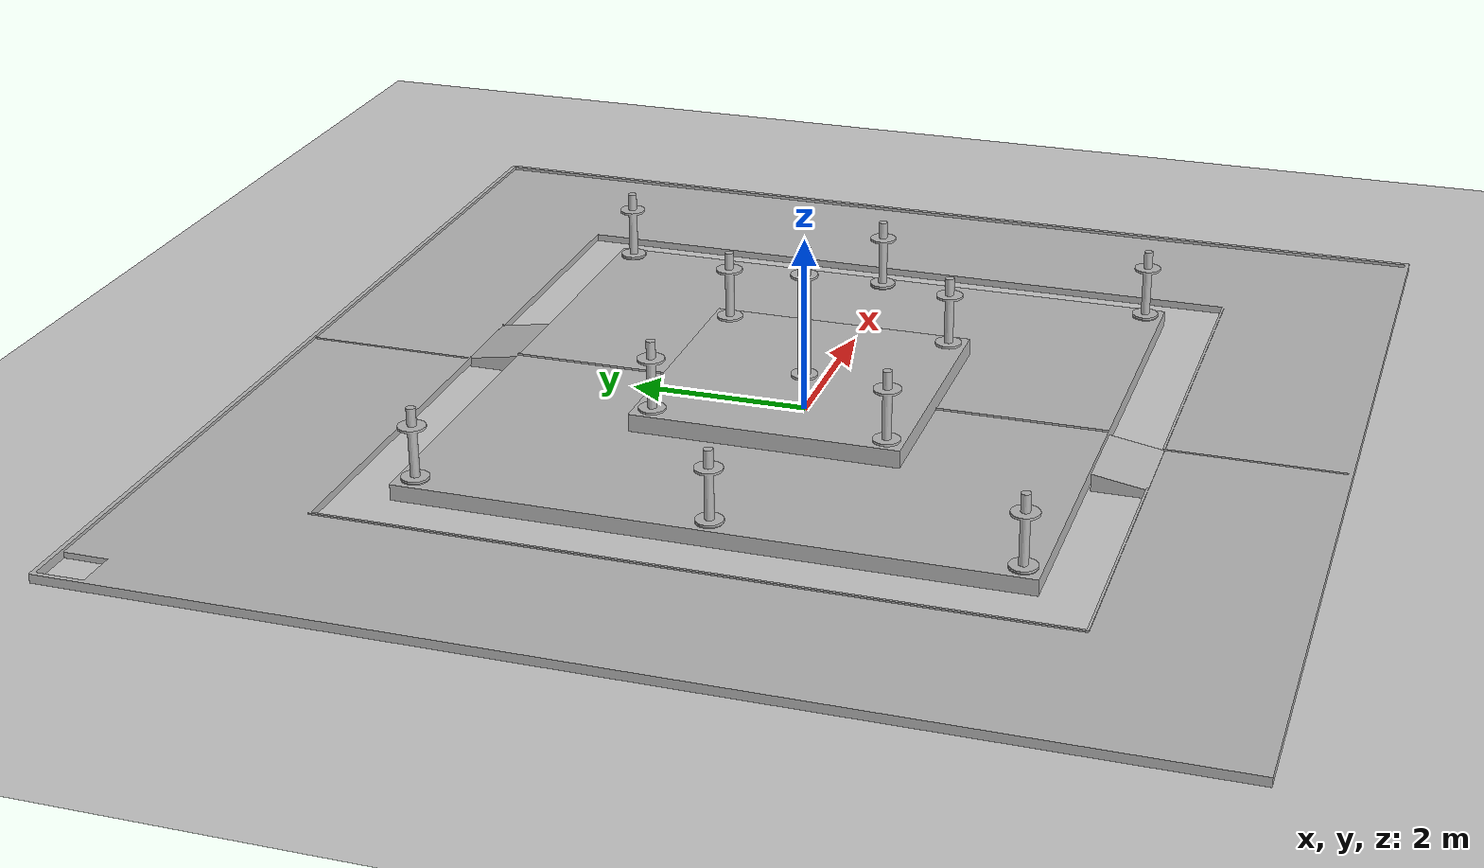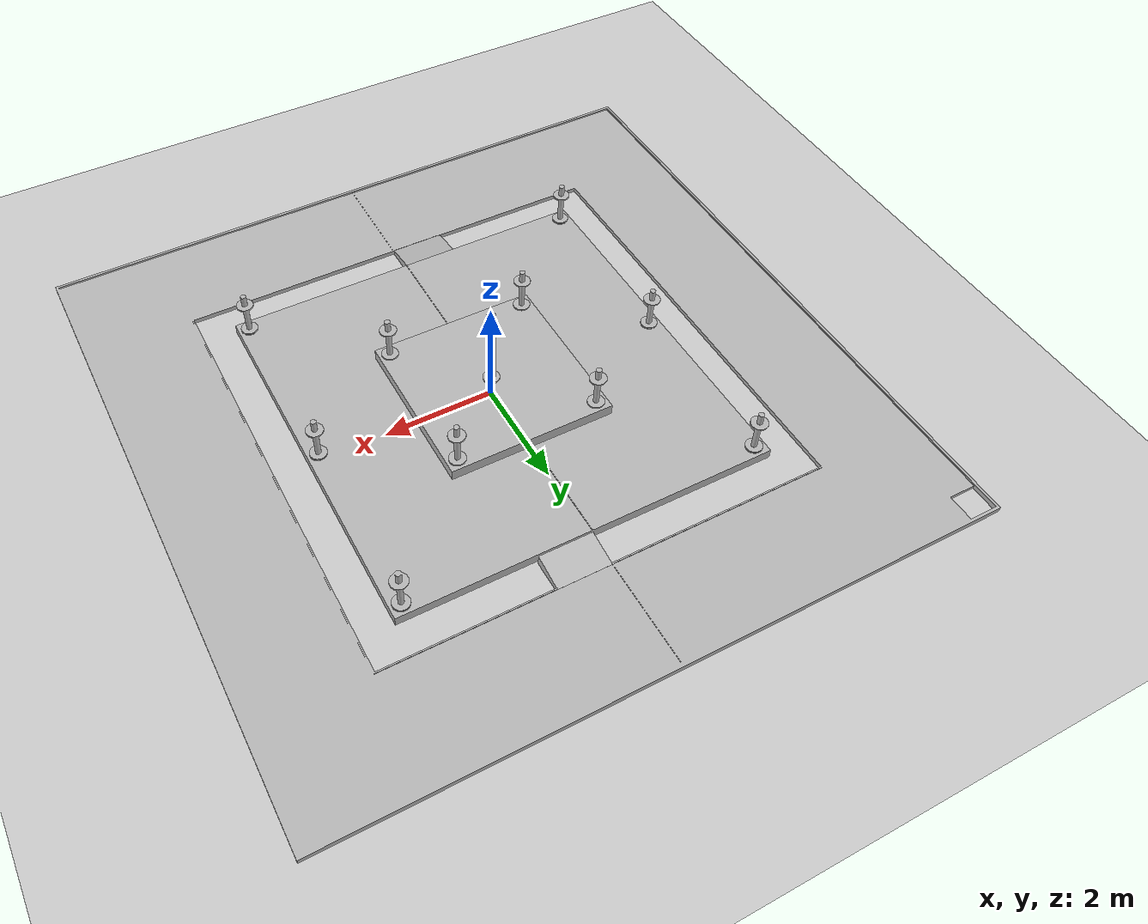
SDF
<sdf version="1.7">
 <world name="default">
  <plugin name="gazebo_ros_state" filename="libgazebo_ros_state.so">
   <ros><namespace>/gazebo</namespace></ros>
   <update_rate>1.0</update_rate>
  </plugin>
  <light name="sun" type="directional">
   <pose>0 0 10 0 -0 0</pose>
   <diffuse>0.8 0.8 0.8 1</diffuse>
   <specular>0.2 0.2 0.2 1</specular>
   <attenuation>
    <range>1000</range>
    <constant>0.9</constant>
    <linear>0.01</linear>
    <quadratic>0.001</quadratic>
   </attenuation>
   <direction>-0.5 0.1 -0.9</direction>
   <spot><inner_angle>0</inner_angle><outer_angle>0</outer_angle><falloff>0</falloff></spot>
  </light>
  <model name="ground_plane">
   <static>1</static>
   <link name="link">
    <collision name="collision">
     <geometry><plane><normal>0 0 1</normal><size>100 100</size></plane></geometry>
     <surface>
      <contact><collide_bitmask>65535</collide_bitmask></contact>
      <friction><ode><mu>100</mu><mu2>50</mu2></ode></friction>
     </surface>
    </collision>
    <visual name="visual">
     <cast_shadows>0</cast_shadows>
     <geometry><plane><normal>0 0 1</normal><size>100 100</size></plane></geometry>
     <material>
      <script><uri>file://media/materials/scripts/gazebo.material</uri><name>Gazebo/Grey</name></script>
     </material>
    </visual>
   </link>
  </model>
  <gravity>0 0 -9.8</gravity>
  <magnetic_field>6e-06 2.3e-05 -4.2e-05</magnetic_field>
  <atmosphere type="adiabatic"/>
  <physics type="ode">
   <max_step_size>0.001</max_step_size>
   <real_time_factor>1</real_time_factor>
   <real_time_update_rate>1000</real_time_update_rate>
  </physics>
  <scene><ambient>0.4 0.4 0.4 1</ambient><background>0.7 0.7 0.7 1</background><shadows>1</shadows></scene>
  <spherical_coordinates>
   <surface_model>EARTH_WGS84</surface_model>
   <latitude_deg>0</latitude_deg>
   <longitude_deg>0</longitude_deg>
   <elevation>0</elevation>
   <heading_deg>0</heading_deg>
  </spherical_coordinates>
  <model name="abu_floor_1">
   <pose>0 0 0.064833 0 -0 0</pose>
   <static>1</static>
   <link name="body">
    <visual name="visual">
     <geometry><mesh><uri>model://abu_floor_1/meshes/abu_floor_1.dae</uri></mesh></geometry>
    </visual>
    <collision name="collision">
     <geometry><mesh><uri>model://abu_floor_1/meshes/abu_floor_1.dae</uri></mesh></geometry>
    </collision>
   </link>
  </model>
  <model name="abu_floor_2">
   <pose>0 0 0.211259 0 -0 0</pose>
   <static>1</static>
   <link name="body">
    <visual name="visual">
     <geometry><mesh><uri>model://abu_floor_2/meshes/abu_floor_2.dae</uri></mesh></geometry>
    </visual>
    <collision name="collision">
     <geometry><mesh><uri>model://abu_floor_2/meshes/abu_floor_2.dae</uri></mesh></geometry>
    </collision>
   </link>
  </model>
  <model name="abu_floor_3">
   <pose>0 0 0.308475 0 -0 0</pose>
   <static>1</static>
   <link name="body">
    <visual name="visual">
     <geometry><mesh><uri>model://abu_floor_3/meshes/abu_floor_3.dae</uri></mesh></geometry>
    </visual>
    <collision name="collision">
     <geometry><mesh><uri>model://abu_floor_3/meshes/abu_floor_3.dae</uri></mesh></geometry>
    </collision>
   </link>
  </model>
  <model name="abu_slope">
   <pose>-0.559963 -3.81862 -0.393393 0 -0 1.57079</pose>
   <static>1</static>
   <link name="body">
    <visual name="visual">
     <geometry><mesh><uri>model://abu_slope/meshes/abu_slope.dae</uri></mesh></geometry>
    </visual>
    <collision name="collision">
     <geometry><mesh><uri>model://abu_slope/meshes/abu_slope.dae</uri></mesh></geometry>
    </collision>
   </link>
  </model>
  <model name="abu_slope_0">
   <pose>0.556362 3.82156 -0.391171 0 0 -1.57079</pose>
   <static>1</static>
   <link name="body">
    <visual name="visual">
     <geometry><mesh><uri>model://abu_slope/meshes/abu_slope.dae</uri></mesh></geometry>
    </visual>
    <collision name="collision">
     <geometry><mesh><uri>model://abu_slope/meshes/abu_slope.dae</uri></mesh></geometry>
    </collision>
   </link>
  </model>
  <model name="abu_pole_big">
   <pose>0 0 0.387397 0 -0 0</pose>
   <static>1</static>
   <link name="body">
    <visual name="visual">
     <geometry><mesh><uri>model://abu_pole_big/meshes/abu_pole_big.dae</uri></mesh></geometry>
    </visual>
    <collision name="collision">
     <geometry><mesh><uri>model://abu_pole_big/meshes/abu_pole_big.dae</uri></mesh></geometry>
    </collision>
   </link>
  </model>
  <model name="abu_pole_small">
   <pose>1.3 1.3 0.409365 0 -0 0</pose>
   <static>1</static>
   <link name="body">
    <visual name="visual">
     <geometry><mesh><uri>model://abu_pole_small/meshes/abu_pole_small.dae</uri></mesh></geometry>
    </visual>
    <collision name="collision">
     <geometry><mesh><uri>model://abu_pole_small/meshes/abu_pole_small.dae</uri></mesh></geometry>
    </collision>
   </link>
  </model>
  <model name="abu_pole_small_0">
   <pose>1.3 -1.3 0.410275 0 -0 0</pose>
   <static>1</static>
   <link name="body">
    <visual name="visual">
     <geometry><mesh><uri>model://abu_pole_small/meshes/abu_pole_small.dae</uri></mesh></geometry>
    </visual>
    <collision name="collision">
     <geometry><mesh><uri>model://abu_pole_small/meshes/abu_pole_small.dae</uri></mesh></geometry>
    </collision>
   </link>
  </model>
  <model name="abu_pole_small_1">
   <pose>-1.3 1.3 0.406727 0 -0 0</pose>
   <static>1</static>
   <link name="body">
    <visual name="visual">
     <geometry><mesh><uri>model://abu_pole_small/meshes/abu_pole_small.dae</uri></mesh></geometry>
    </visual>
    <collision name="collision">
     <geometry><mesh><uri>model://abu_pole_small/meshes/abu_pole_small.dae</uri></mesh></geometry>
    </collision>
   </link>
  </model>
  <model name="abu_pole_small_2">
   <pose>-1.3 -1.3 0.409582 0 -0 0</pose>
   <static>1</static>
   <link name="body">
    <visual name="visual">
     <geometry><mesh><uri>model://abu_pole_small/meshes/abu_pole_small.dae</uri></mesh></geometry>
    </visual>
    <collision name="collision">
     <geometry><mesh><uri>model://abu_pole_small/meshes/abu_pole_small.dae</uri></mesh></geometry>
    </collision>
   </link>
  </model>
  <model name="abu_pole_small_3">
   <pose>-3.2 -3.2 0.217878 0 -0 0</pose>
   <static>1</static>
   <link name="body">
    <visual name="visual">
     <geometry><mesh><uri>model://abu_pole_small/meshes/abu_pole_small.dae</uri></mesh></geometry>
    </visual>
    <collision name="collision">
     <geometry><mesh><uri>model://abu_pole_small/meshes/abu_pole_small.dae</uri></mesh></geometry>
    </collision>
   </link>
  </model>
  <model name="abu_pole_small_4">
   <pose>-3.2 0 0.216958 0 -0 0</pose>
   <static>1</static>
   <link name="body">
    <visual name="visual">
     <geometry><mesh><uri>model://abu_pole_small/meshes/abu_pole_small.dae</uri></mesh></geometry>
    </visual>
    <collision name="collision">
     <geometry><mesh><uri>model://abu_pole_small/meshes/abu_pole_small.dae</uri></mesh></geometry>
    </collision>
   </link>
  </model>
  <model name="abu_pole_small_5">
   <pose>-3.2 3.2 0.219012 0 -0 0</pose>
   <static>1</static>
   <link name="body">
    <visual name="visual">
     <geometry><mesh><uri>model://abu_pole_small/meshes/abu_pole_small.dae</uri></mesh></geometry>
    </visual>
    <collision name="collision">
     <geometry><mesh><uri>model://abu_pole_small/meshes/abu_pole_small.dae</uri></mesh></geometry>
    </collision>
   </link>
  </model>
  <model name="abu_pole_small_6">
   <pose>3.2 -3.2 0.221421 0 -0 0</pose>
   <static>1</static>
   <link name="body">
    <visual name="visual">
     <geometry><mesh><uri>model://abu_pole_small/meshes/abu_pole_small.dae</uri></mesh></geometry>
    </visual>
    <collision name="collision">
     <geometry><mesh><uri>model://abu_pole_small/meshes/abu_pole_small.dae</uri></mesh></geometry>
    </collision>
   </link>
  </model>
  <model name="abu_pole_small_7">
   <pose>3.2 3.2 0.221074 0 -0 0</pose>
   <static>1</static>
   <link name="body">
    <visual name="visual">
     <geometry><mesh><uri>model://abu_pole_small/meshes/abu_pole_small.dae</uri></mesh></geometry>
    </visual>
    <collision name="collision">
     <geometry><mesh><uri>model://abu_pole_small/meshes/abu_pole_small.dae</uri></mesh></geometry>
    </collision>
   </link>
  </model>
  <model name="abu_pole_small_8">
   <pose>3.2 0 0.221887 0 -0 0</pose>
   <static>1</static>
   <link name="body">
    <visual name="visual">
     <geometry><mesh><uri>model://abu_pole_small/meshes/abu_pole_small.dae</uri></mesh></geometry>
    </visual>
    <collision name="collision">
     <geometry><mesh><uri>model://abu_pole_small/meshes/abu_pole_small.dae</uri></mesh></geometry>
    </collision>
   </link>
  </model>
 </world>
</sdf>
